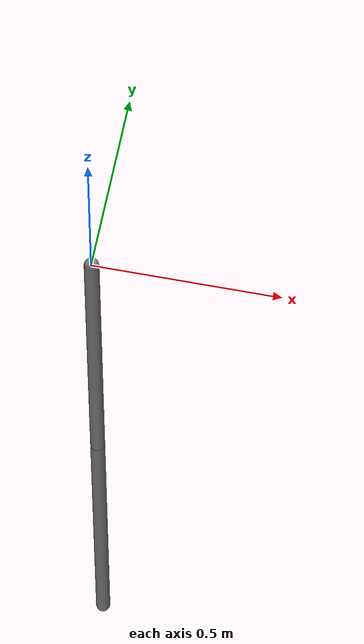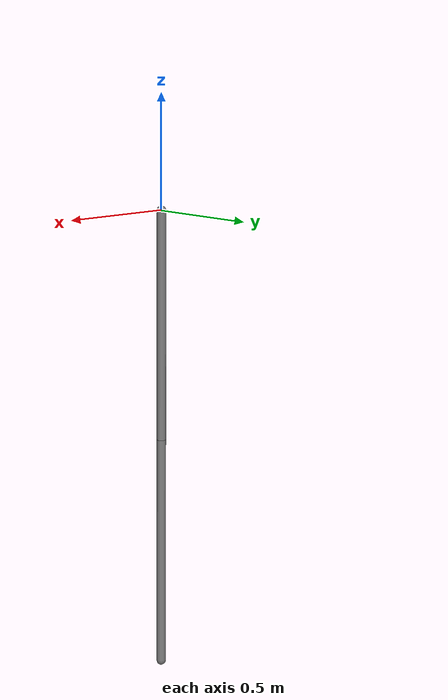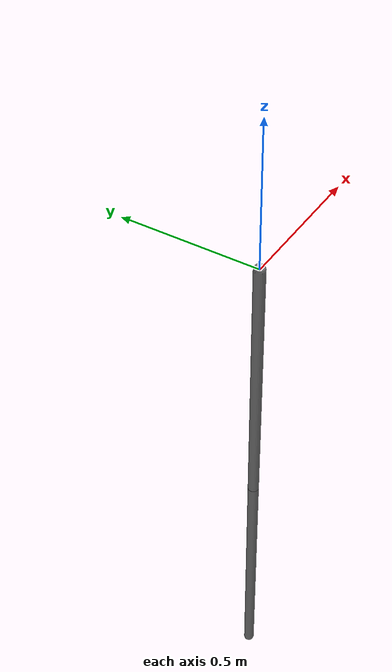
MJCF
<mujoco model="double_pendulum_coriolis">
            <option gravity="0 0 0" timestep="0.001"/>
            <worldbody>
                <body name="link1" pos="0 0 0">
                    <joint type="hinge" axis="0 1 0"/>
                    <geom type="capsule" size="0.02 0.5" pos="0 0 -0.5" mass="1.0"/>
                    <body name="link2" pos="0 0 -1">
                        <joint type="hinge" axis="0 1 0"/>
                        <geom type="capsule" size="0.02 0.5" pos="0 0 -0.5" mass="1.0"/>
                    </body>
                </body>
            </worldbody>
        </mujoco>
